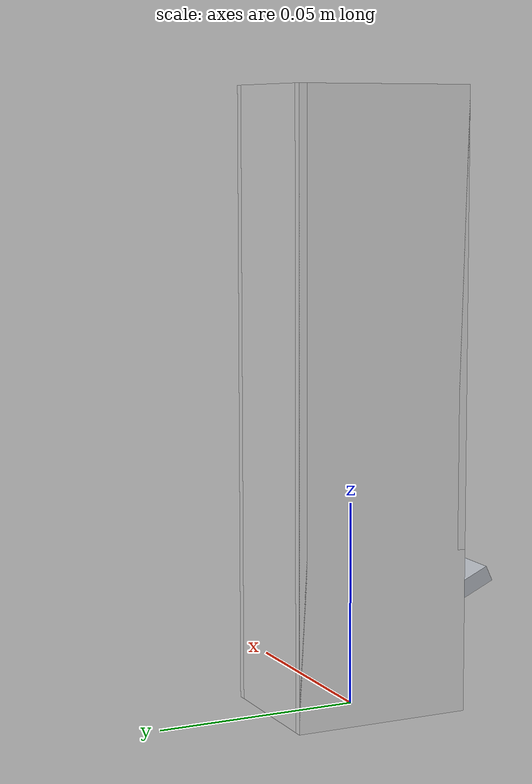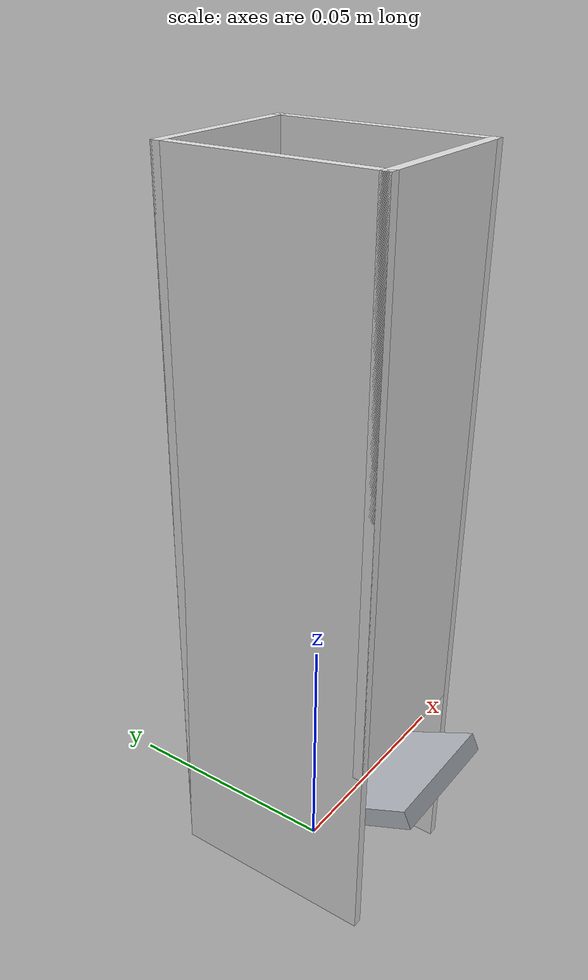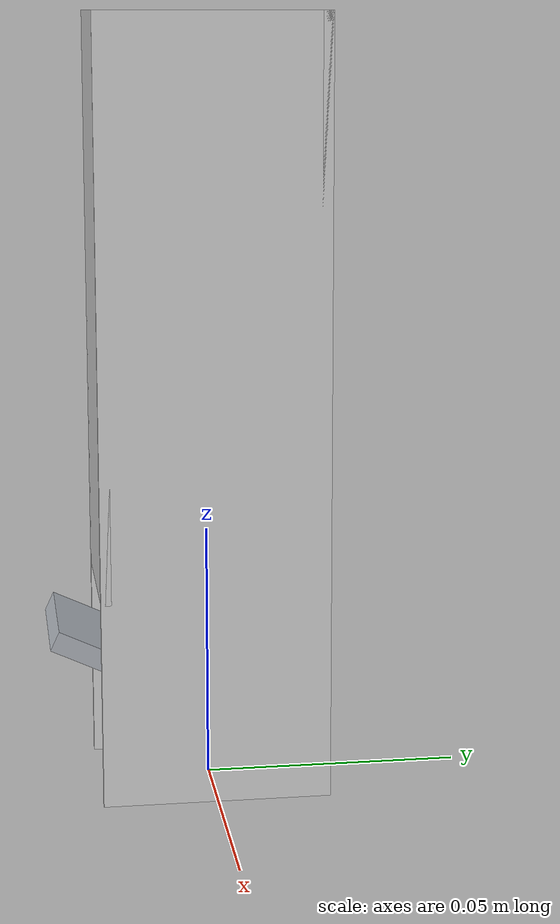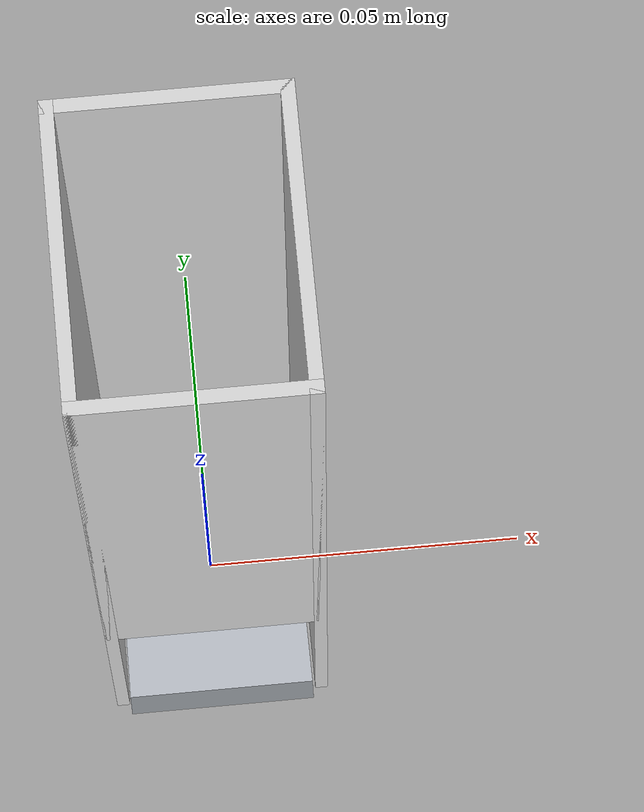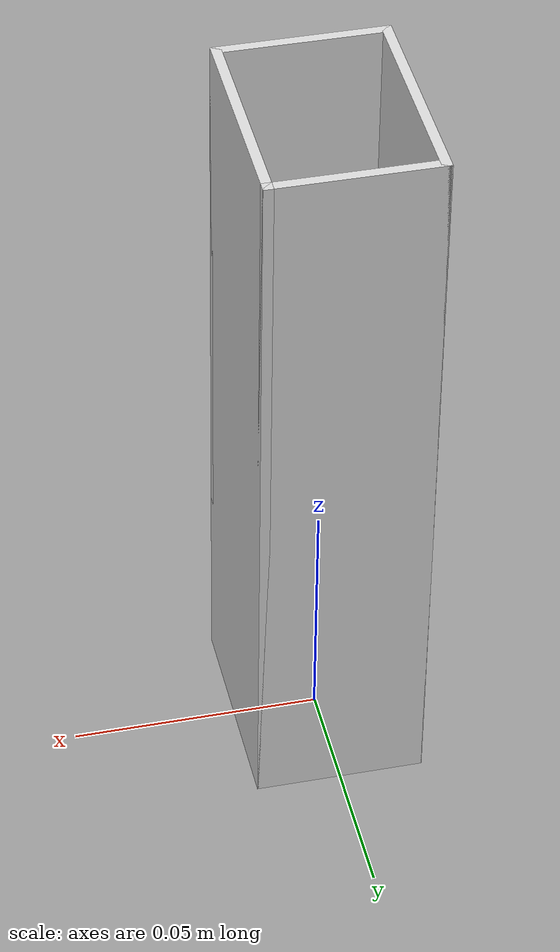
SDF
<?xml version="1.0"?>
<sdf version="1.9">
  <model name="screw_feeder">
    <static>true</static>

    <!-- Material shorthand: light gray -->
    <!-- ambient 0.75 0.75 0.75 / diffuse 0.85 0.85 0.85 -->

    <!-- ── Left wall (−x outer) ─────────────────────────────────── -->
    <link name="wall_left">
      <pose>-0.016 0 0.075 0 0 0</pose>
      <collision name="col">
        <geometry><box><size>0.002 0.044 0.150</size></box></geometry>
      </collision>
      <visual name="vis">
        <geometry><box><size>0.002 0.044 0.150</size></box></geometry>
        <material>
          <ambient>0.75 0.75 0.75 1</ambient>
          <diffuse>0.85 0.85 0.85 1</diffuse>
          <specular>0.3 0.3 0.3 1</specular>
        </material>
      </visual>
    </link>

    <!-- ── Right wall (+x outer) ────────────────────────────────── -->
    <link name="wall_right">
      <pose>0.016 0 0.075 0 0 0</pose>
      <collision name="col">
        <geometry><box><size>0.002 0.044 0.150</size></box></geometry>
      </collision>
      <visual name="vis">
        <geometry><box><size>0.002 0.044 0.150</size></box></geometry>
        <material>
          <ambient>0.75 0.75 0.75 1</ambient>
          <diffuse>0.85 0.85 0.85 1</diffuse>
          <specular>0.3 0.3 0.3 1</specular>
        </material>
      </visual>
    </link>

    <!-- ── Back wall (+y outer, full height) ────────────────────── -->
    <link name="wall_back">
      <pose>0 0.021 0.075 0 0 0</pose>
      <collision name="col">
        <geometry><box><size>0.034 0.002 0.150</size></box></geometry>
      </collision>
      <visual name="vis">
        <geometry><box><size>0.034 0.002 0.150</size></box></geometry>
        <material>
          <ambient>0.75 0.75 0.75 1</ambient>
          <diffuse>0.85 0.85 0.85 1</diffuse>
          <specular>0.3 0.3 0.3 1</specular>
        </material>
      </visual>
    </link>

    <!-- ── Front wall (−y outer, starts at z=0.040 — leaves 40 mm exit gap) -->
    <link name="wall_front">
      <!-- Center of this panel: z = (0.040 + 0.150) / 2 = 0.095; height = 0.110 -->
      <pose>0 -0.021 0.095 0 0 0</pose>
      <collision name="col">
        <geometry><box><size>0.034 0.002 0.110</size></box></geometry>
      </collision>
      <visual name="vis">
        <geometry><box><size>0.034 0.002 0.110</size></box></geometry>
        <material>
          <ambient>0.75 0.75 0.75 1</ambient>
          <diffuse>0.85 0.85 0.85 1</diffuse>
          <specular>0.3 0.3 0.3 1</specular>
        </material>
      </visual>
    </link>

    <!-- ── Pickup ramp ───────────────────────────────────────────── -->
    <link name="ramp">
      <pose>0 -0.008 0.022 -0.436 0 0</pose>
      <collision name="col">
        <geometry><box><size>0.028 0.050 0.004</size></box></geometry>
      </collision>
      <visual name="vis">
        <geometry><box><size>0.028 0.050 0.004</size></box></geometry>
        <material>
          <ambient>0.60 0.62 0.65 1</ambient>
          <diffuse>0.70 0.72 0.75 1</diffuse>
          <specular>0.4 0.4 0.4 1</specular>
        </material>
      </visual>
    </link>

  </model>
</sdf>
